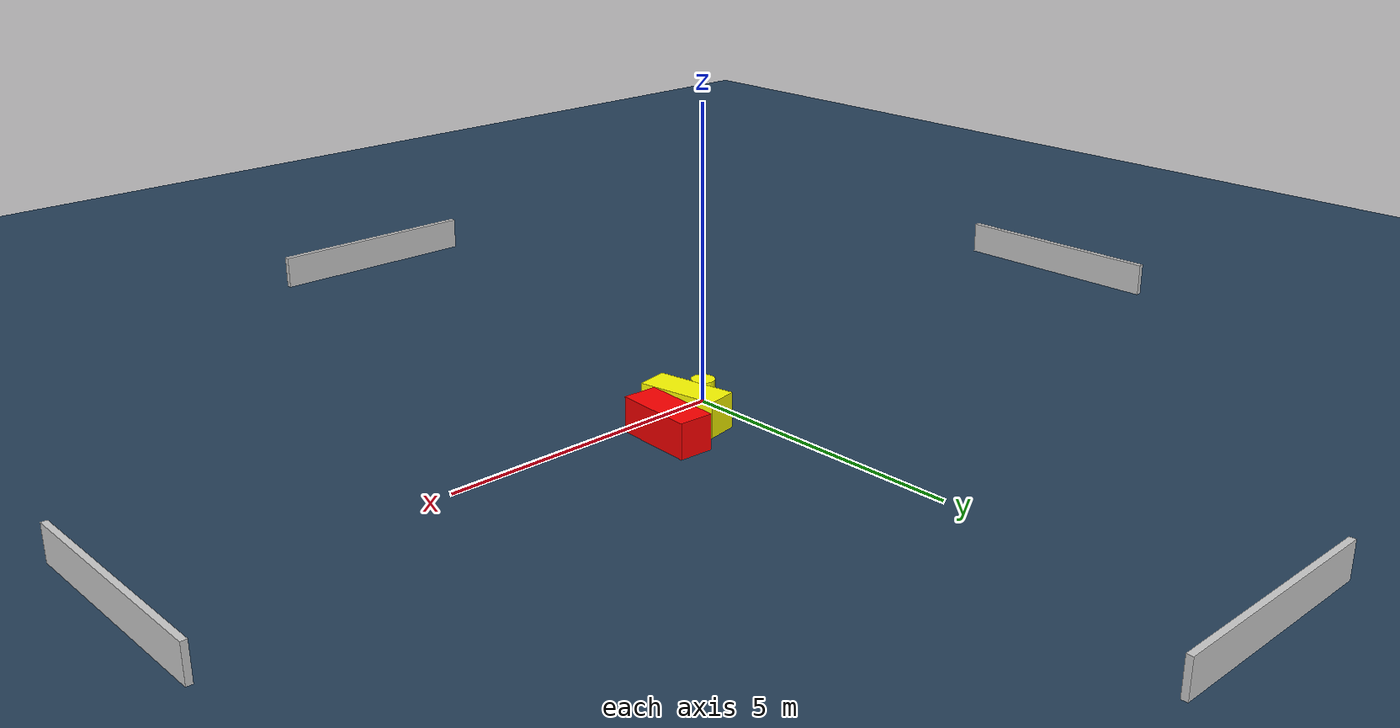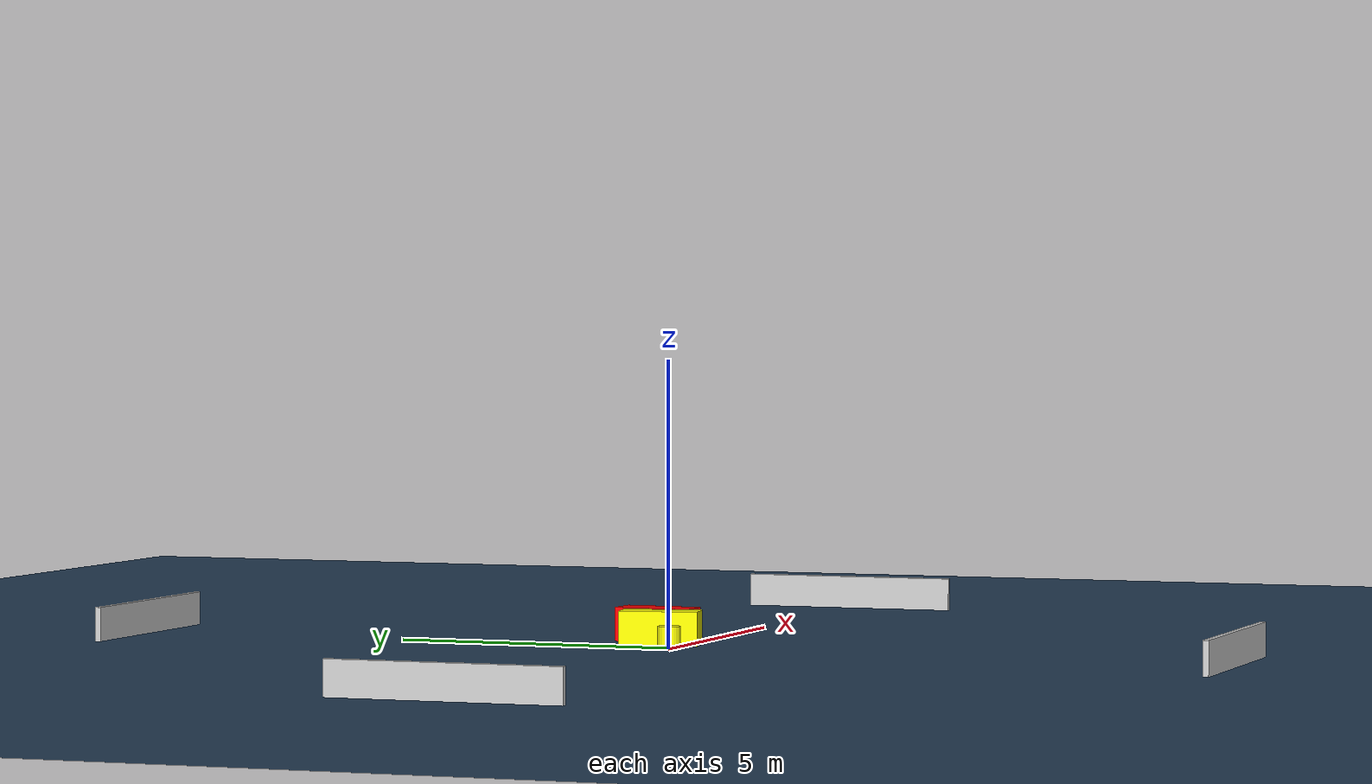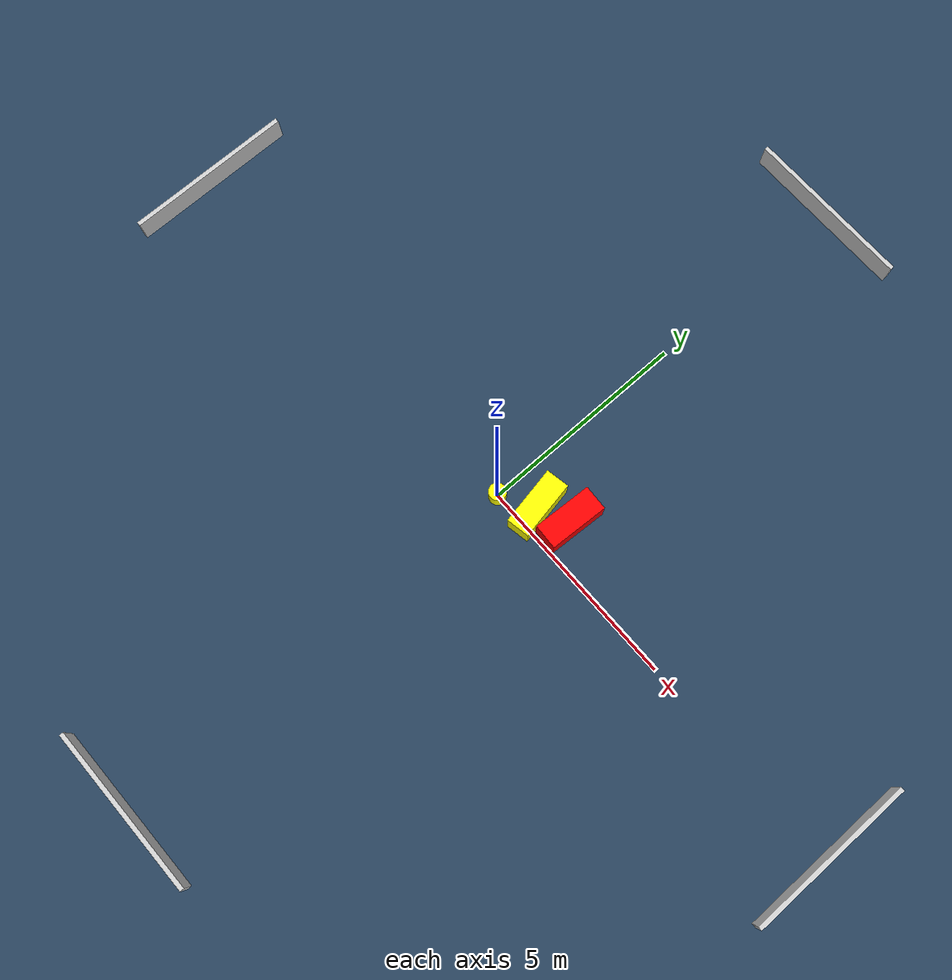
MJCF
<?xml version="1.0" ?>
<mujoco model="generated_environment">
  <option timestep="0.01" integrator="RK4" cone="elliptic"/>
  <default>
    <geom density="1"/>
  </default>
  <asset>
    <texture builtin="gradient" height="3072" name="skybox" rgb1="0.3 0.5 0.7" rgb2="0 0 0" type="skybox" width="512"/>
    <texture builtin="checker" height="300" name="groundplane" rgb1="0.2 0.3 0.4" rgb2="0.1 0.2 0.3" type="2d" width="300"/>
    <material name="groundplane" reflectance="0.2" texrepeat="5 5" texture="groundplane"/>
  </asset>
  <worldbody>
    <light dir="0 0 -1" directional="true" pos="0 0 1.5"/>
    <geom condim="3" friction="0.5 0.005 0.001" material="groundplane" name="floor" pos="0 0 0" size="0 0 0.05" type="plane"/>
    <body name="walls">
      <geom name="wall_1" condim="4" pos="-10.0 0.0 0.3" rgba="0.800000011920929 0.800000011920929 0.800000011920929 1.0" size="0.05 2.0 0.3" type="box"/>
      <geom name="wall_2" condim="4" pos="10.0 0.0 0.3" rgba="0.800000011920929 0.800000011920929 0.800000011920929 1.0" size="0.05 2.0 0.3" type="box"/>
      <geom name="wall_3" condim="4" pos="0.0 -10.0 0.3" rgba="0.800000011920929 0.800000011920929 0.800000011920929 1.0" size="2.0 0.05 0.3" type="box"/>
      <geom name="wall_4" condim="4" pos="0.0 10.0 0.3" rgba="0.800000011920929 0.800000011920929 0.800000011920929 1.0" size="2.0 0.05 0.3" type="box"/>
    </body>
    <body name="robot">
      <joint name="joint_x" type="slide" pos="0 0 0" axis="1 0 0"/>
      <joint name="joint_y" type="slide" pos="0 0 0" axis="0 1 0"/>
      <geom name="robot" type="cylinder" pos="0.0 0.0 0.2" size="0.2 0.2 0.0" mass="5.0" friction="1.0 0.005 0.0001" condim="4" rgba="1.0 1.0 0.0 1.0"/>
    </body>
    <body name="obstacle_1_movable">
      <geom name="obstacle_1_movable" condim="4" pos="0.7874657102341643 0.4482425588821807 0.3" euler="0 0 10.315764716825333" friction="0.0 0.005 0.001" rgba="1.0 1.0 0.0 1.0" size="0.2733605133166308 0.6958660065212103 0.3" type="box" mass="0.1"/>
      <joint type="free"/>
    </body>
    <body name="obstacle_2_static">
      <geom name="obstacle_2_static" condim="4" pos="1.4787335474160808 0.7613335543382548 0.3" euler="0 0 266.8908053829204" friction="0.0 0.005 0.001" rgba="1.0 0.0 0.0 1.0" size="0.6928236801627332 0.29556787942939344 0.3" type="box"/>
    </body>
  </worldbody>
  <actuator>
    <motor name="actuator_x" joint="joint_x" gear="1" ctrlrange="-1 1"/>
    <motor name="actuator_y" joint="joint_y" gear="1" ctrlrange="-1 1"/>
  </actuator>
</mujoco>
